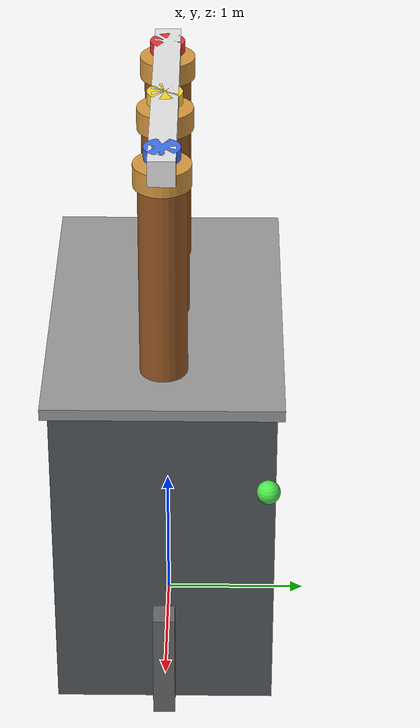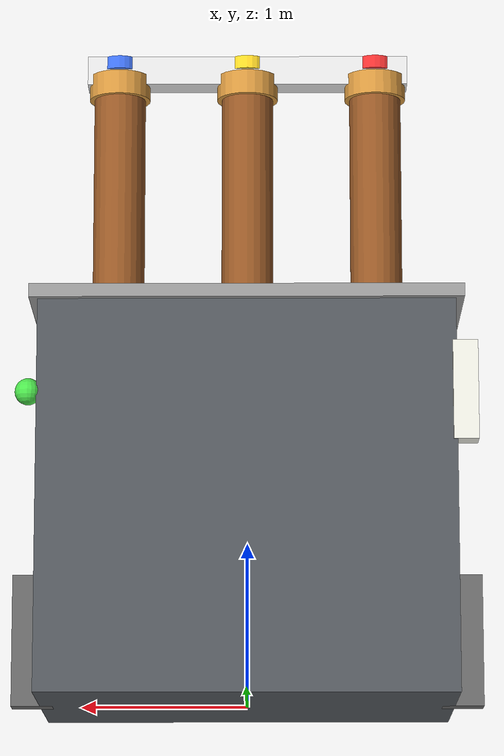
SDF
<?xml version="1.0"?>

<sdf version="1.10">

<model name="breaker">

  <static>true</static>

  <link name="body">

    <!-- MAIN BREAKER TANK -->

    <visual name="tank_main">
      <pose>0 0 1.2 0 0 0</pose>
      <geometry>
        <box>
          <size>2.5 1.5 2.4</size>
        </box>
      </geometry>
      <material>
        <ambient>0.25 0.27 0.28 1</ambient>
        <diffuse>0.32 0.34 0.36 1</diffuse>
        <specular>0.3 0.3 0.3 1</specular>
      </material>
    </visual>

    <!-- Tank top edge -->
    <visual name="tank_edge">
      <pose>0 0 2.4 0 0 0</pose>
      <geometry>
        <box>
          <size>2.6 1.6 0.08</size>
        </box>
      </geometry>
      <material>
        <ambient>0.5 0.5 0.5 1</ambient>
        <diffuse>0.6 0.6 0.6 1</diffuse>
      </material>
    </visual>

    <!-- HIGH VOLTAGE INSULATORS (A, B, C) -->

    <visual name="insulator_a_body">
      <pose>-0.8 0 3.1 0 0 0</pose>
      <geometry>
        <cylinder>
          <radius>0.16</radius>
          <length>1.6</length>
        </cylinder>
      </geometry>
      <material>
        <ambient>0.5 0.3 0.12 1</ambient>
        <diffuse>0.6 0.35 0.15 1</diffuse>
      </material>
    </visual>

    <visual name="insulator_a_cap">
      <pose>-0.8 0 3.9 0 0 0</pose>
      <geometry>
        <cylinder>
          <radius>0.19</radius>
          <length>0.15</length>
        </cylinder>
      </geometry>
      <material>
        <ambient>0.75 0.5 0.2 1</ambient>
        <diffuse>0.85 0.6 0.25 1</diffuse>
      </material>
    </visual>

    <visual name="phase_marker_a">
      <pose>-0.8 0 4.05 0 0 0</pose>
      <geometry>
        <cylinder>
          <radius>0.12</radius>
          <length>0.08</length>
        </cylinder>
      </geometry>
      <material>
        <ambient>0.85 0.12 0.12 1</ambient>
        <diffuse>0.95 0.2 0.2 1</diffuse>
      </material>
    </visual>

    <visual name="insulator_b_body">
      <pose>0 0 3.1 0 0 0</pose>
      <geometry>
        <cylinder>
          <radius>0.16</radius>
          <length>1.6</length>
        </cylinder>
      </geometry>
      <material>
        <ambient>0.5 0.3 0.12 1</ambient>
        <diffuse>0.6 0.35 0.15 1</diffuse>
      </material>
    </visual>

    <visual name="insulator_b_cap">
      <pose>0 0 3.9 0 0 0</pose>
      <geometry>
        <cylinder>
          <radius>0.19</radius>
          <length>0.15</length>
        </cylinder>
      </geometry>
      <material>
        <ambient>0.75 0.5 0.2 1</ambient>
        <diffuse>0.85 0.6 0.25 1</diffuse>
      </material>
    </visual>

    <visual name="phase_marker_b">
      <pose>0 0 4.05 0 0 0</pose>
      <geometry>
        <cylinder>
          <radius>0.12</radius>
          <length>0.08</length>
        </cylinder>
      </geometry>
      <material>
        <ambient>0.90 0.75 0.10 1</ambient>
        <diffuse>1.0 0.85 0.15 1</diffuse>
      </material>
    </visual>

    <visual name="insulator_c_body">
      <pose>0.8 0 3.1 0 0 0</pose>
      <geometry>
        <cylinder>
          <radius>0.16</radius>
          <length>1.6</length>
        </cylinder>
      </geometry>
      <material>
        <ambient>0.5 0.3 0.12 1</ambient>
        <diffuse>0.6 0.35 0.15 1</diffuse>
      </material>
    </visual>

    <visual name="insulator_c_cap">
      <pose>0.8 0 3.9 0 0 0</pose>
      <geometry>
        <cylinder>
          <radius>0.19</radius>
          <length>0.15</length>
        </cylinder>
      </geometry>
      <material>
        <ambient>0.75 0.5 0.2 1</ambient>
        <diffuse>0.85 0.6 0.25 1</diffuse>
      </material>
    </visual>

    <visual name="phase_marker_c">
      <pose>0.8 0 4.05 0 0 0</pose>
      <geometry>
        <cylinder>
          <radius>0.12</radius>
          <length>0.08</length>
        </cylinder>
      </geometry>
      <material>
        <ambient>0.15 0.35 0.85 1</ambient>
        <diffuse>0.25 0.45 0.95 1</diffuse>
      </material>
    </visual>

    <!-- MECHANICAL OPERATING HANDLE -->

    <visual name="operating_handle">
      <pose>-1.3 0.7 1.8 0 0 0</pose>
      <geometry>
        <box>
          <size>0.15 0.15 0.6</size>
        </box>
      </geometry>
      <material>
        <ambient>0.85 0.85 0.82 1</ambient>
        <diffuse>0.92 0.92 0.88 1</diffuse>
      </material>
    </visual>

    <!-- METAL SUPPORT FRAME -->

    <visual name="support_left">
      <pose>-1.3 0 0.4 0 0 0</pose>
      <geometry>
        <box>
          <size>0.25 0.15 0.8</size>
        </box>
      </geometry>
      <material>
        <ambient>0.3 0.3 0.3 1</ambient>
        <diffuse>0.4 0.4 0.4 1</diffuse>
      </material>
    </visual>

    <visual name="support_right">
      <pose>1.3 0 0.4 0 0 0</pose>
      <geometry>
        <box>
          <size>0.25 0.15 0.8</size>
        </box>
      </geometry>
      <material>
        <ambient>0.3 0.3 0.3 1</ambient>
        <diffuse>0.4 0.4 0.4 1</diffuse>
      </material>
    </visual>

    <!-- BOTTOM CONNECTION BUS -->

    <visual name="bottom_bus">
      <pose>0 0 0.1 0 0 0</pose>
      <geometry>
        <box>
          <size>2.2 0.2 0.1</size>
        </box>
      </geometry>
      <material>
        <ambient>0.8 0.8 0.8 1</ambient>
        <diffuse>0.9 0.9 0.9 1</diffuse>
      </material>
    </visual>

    <!-- TOP BUS CONNECTION -->

    <visual name="top_bus">
      <pose>0 0 4.0 0 0 0</pose>
      <geometry>
        <box>
          <size>2.0 0.18 0.18</size>
        </box>
      </geometry>
      <material>
        <ambient>0.8 0.8 0.8 1</ambient>
        <diffuse>0.9 0.9 0.9 1</diffuse>
      </material>
    </visual>

    <!-- STATUS INDICATOR LIGHT -->

    <visual name="status_light_green">
      <pose>1.3 0.7 1.8 0 0 0</pose>
      <geometry>
        <sphere>
          <radius>0.08</radius>
        </sphere>
      </geometry>
      <material>
        <ambient>0.2 0.8 0.2 1</ambient>
        <diffuse>0.3 0.9 0.3 1</diffuse>
      </material>
    </visual>

    <!-- COLLISION -->

    <collision name="collision">
      <pose>0 0 1.2 0 0 0</pose>
      <geometry>
        <box>
          <size>2.5 1.5 2.4</size>
        </box>
      </geometry>
    </collision>

  </link>

</model>

</sdf>
